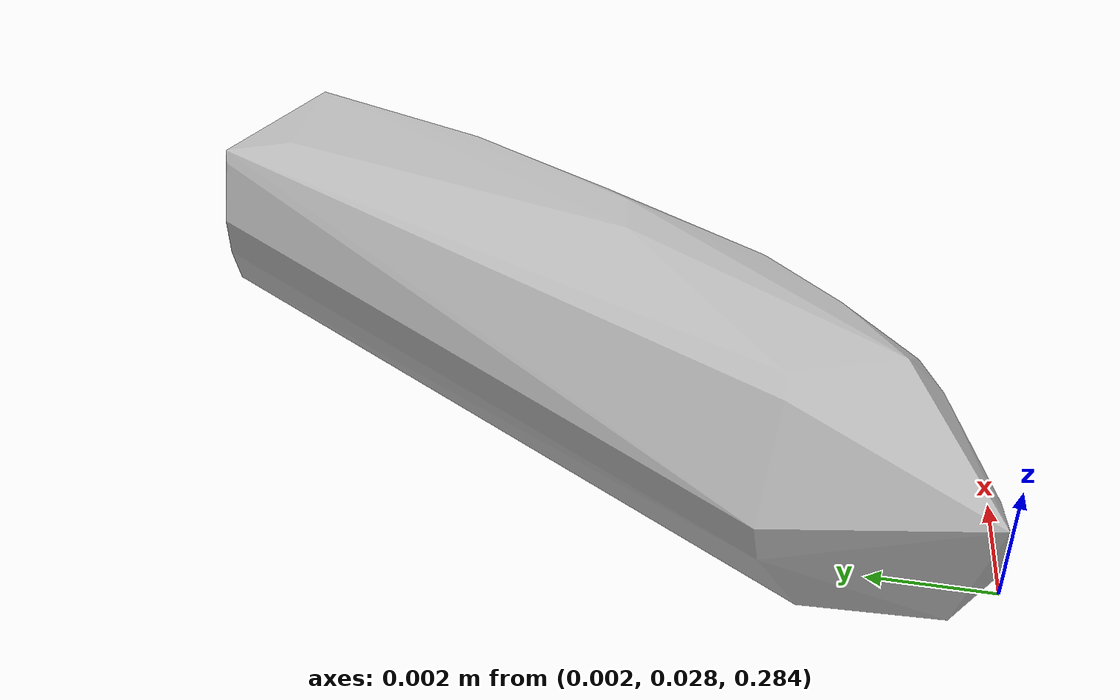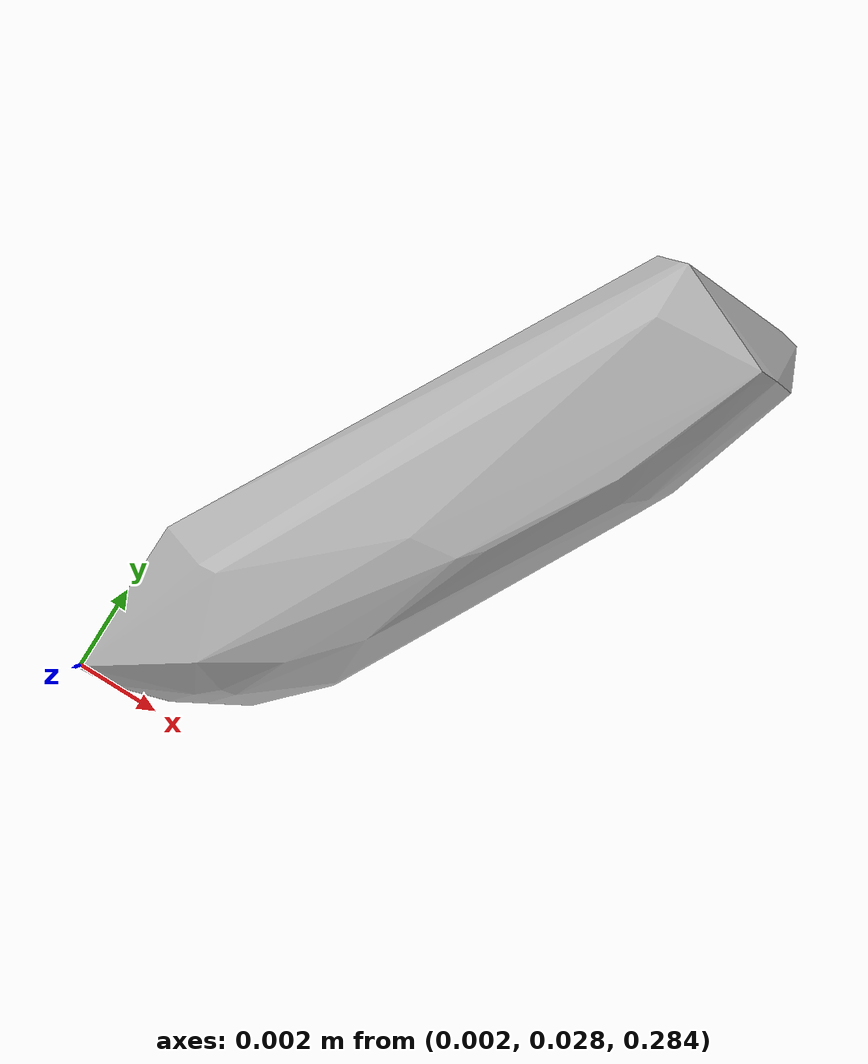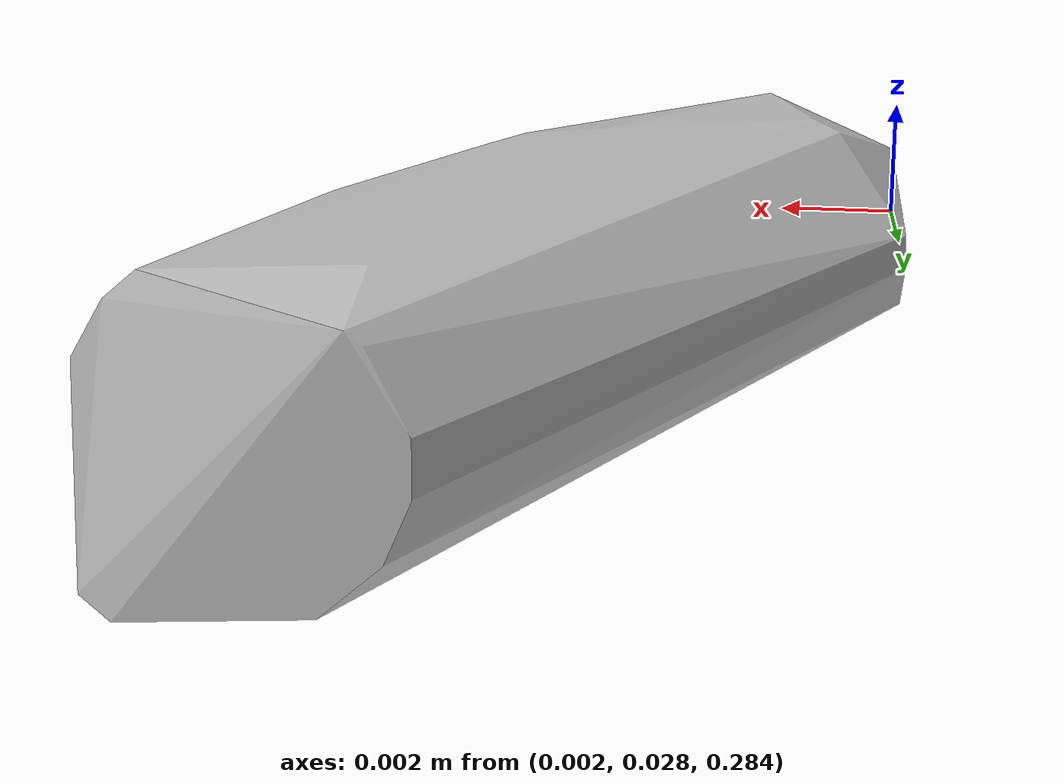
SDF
<?xml version="1.0"?>
<sdf version="1.7">
  <model name="vascular_partexport058">
    <link name="vascular_partexport058_body">
      <visual name="vascular_partexport058_visual">
        <geometry>
          <mesh>
            <uri>vascular_partexport058.obj</uri>
          </mesh>
        </geometry>
      </visual>
      <collision name="vascular_partexport058_collision">
        <geometry>
          <mesh>
            <uri>vascular_partexport058.obj</uri>
          </mesh>
        </geometry>
      </collision>
    </link>
    <frame name="vascular_partexport058_center">
      <pose relative_to="vascular_partexport058_body">0 0 0 0 0 0</pose>
    </frame>
  </model>
</sdf>
